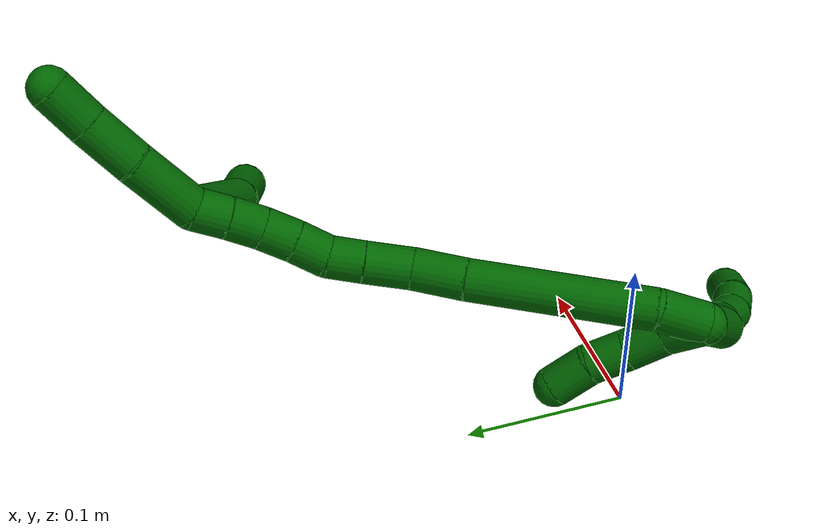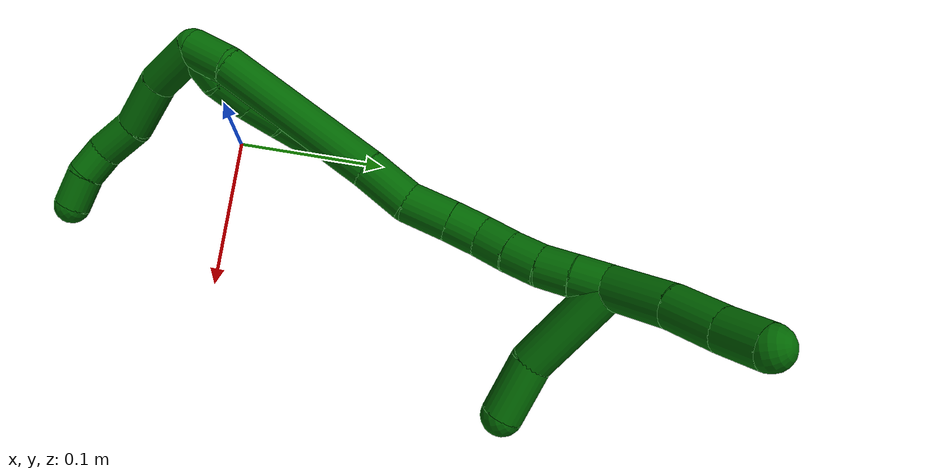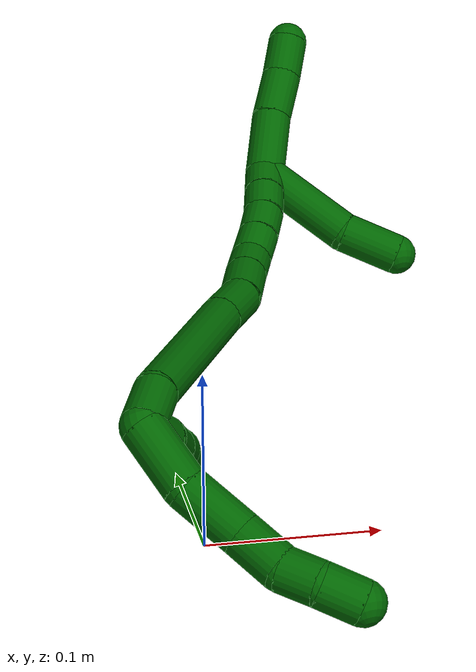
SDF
<sdf version="1.7">
 <world name="default">
  <model name="6">
   <static>0</static>
   <link name="6">
    <collision name="collision-cylinder-e_1_2_8">
     <pose>0.005325 0.004337 -0.018304 -2.90895 0.275843 -1.74212</pose>
     <geometry><cylinder><radius>0.0125</radius><length>0.0391</length></cylinder></geometry>
     <surface>
      <friction><ode><mu>1.16</mu><mu2>1.16</mu2><slip1>0</slip1><slip2>0</slip2></ode></friction>
      <contact><ode><kp>1e+06</kp><kd>1</kd><max_vel>0</max_vel><min_depth>0.001</min_depth></ode></contact>
     </surface>
    </collision>
    <visual name="visual-cylinder-e_1_2_8">
     <pose>0.005325 0.004337 -0.018304 -2.90895 0.275843 -1.74212</pose>
     <geometry><cylinder><radius>0.0125</radius><length>0.0391</length></cylinder></geometry>
     <material><ambient>0 0.392157 0.003922 1</ambient></material>
    </visual>
    <collision name="collision-cylinder-e_2_8_9">
     <pose>0.018654 0.017086 -0.051414 -2.6249 0.43943 -1.40329</pose>
     <geometry><cylinder><radius>0.0125</radius><length>0.037633</length></cylinder></geometry>
     <surface>
      <friction><ode><mu>1.16</mu><mu2>1.16</mu2><slip1>0</slip1><slip2>0</slip2></ode></friction>
      <contact><ode><kp>1e+06</kp><kd>1</kd><max_vel>0</max_vel><min_depth>0.001</min_depth></ode></contact>
     </surface>
    </collision>
    <visual name="visual-cylinder-e_2_8_9">
     <pose>0.018654 0.017086 -0.051414 -2.6249 0.43943 -1.40329</pose>
     <geometry><cylinder><radius>0.0125</radius><length>0.037633</length></cylinder></geometry>
     <material><ambient>0 0.392157 0.003922 1</ambient></material>
    </visual>
    <collision name="collision-cylinder-e_3_9_10">
     <pose>0.033966 0.027417 -0.078231 -2.98317 0.540932 -2.58391</pose>
     <geometry><cylinder><radius>0.0125</radius><length>0.028379</length></cylinder></geometry>
     <surface>
      <friction><ode><mu>1.16</mu><mu2>1.16</mu2><slip1>0</slip1><slip2>0</slip2></ode></friction>
      <contact><ode><kp>1e+06</kp><kd>1</kd><max_vel>0</max_vel><min_depth>0.001</min_depth></ode></contact>
     </surface>
    </collision>
    <visual name="visual-cylinder-e_3_9_10">
     <pose>0.033966 0.027417 -0.078231 -2.98317 0.540932 -2.58391</pose>
     <geometry><cylinder><radius>0.0125</radius><length>0.028379</length></cylinder></geometry>
     <material><ambient>0 0.392157 0.003922 1</ambient></material>
    </visual>
    <collision name="collision-cylinder-e_4_10_11">
     <pose>0.048925 0.031942 -0.096827 -2.76479 0.82413 -2.31894</pose>
     <geometry><cylinder><radius>0.0125</radius><length>0.020852</length></cylinder></geometry>
     <surface>
      <friction><ode><mu>1.16</mu><mu2>1.16</mu2><slip1>0</slip1><slip2>0</slip2></ode></friction>
      <contact><ode><kp>1e+06</kp><kd>1</kd><max_vel>0</max_vel><min_depth>0.001</min_depth></ode></contact>
     </surface>
    </collision>
    <visual name="visual-cylinder-e_4_10_11">
     <pose>0.048925 0.031942 -0.096827 -2.76479 0.82413 -2.31894</pose>
     <geometry><cylinder><radius>0.0125</radius><length>0.020852</length></cylinder></geometry>
     <material><ambient>0 0.392157 0.003922 1</ambient></material>
    </visual>
    <collision name="collision-cylinder-e_5_11_6">
     <pose>0.064146 0.04064 -0.110485 -2.43061 0.681256 -1.52445</pose>
     <geometry><cylinder><radius>0.0125</radius><length>0.024036</length></cylinder></geometry>
     <surface>
      <friction><ode><mu>1.16</mu><mu2>1.16</mu2><slip1>0</slip1><slip2>0</slip2></ode></friction>
      <contact><ode><kp>1e+06</kp><kd>1</kd><max_vel>0</max_vel><min_depth>0.001</min_depth></ode></contact>
     </surface>
    </collision>
    <visual name="visual-cylinder-e_5_11_6">
     <pose>0.064146 0.04064 -0.110485 -2.43061 0.681256 -1.52445</pose>
     <geometry><cylinder><radius>0.0125</radius><length>0.024036</length></cylinder></geometry>
     <material><ambient>0 0.392157 0.003922 1</ambient></material>
    </visual>
    <collision name="collision-cylinder-e_1_2_12">
     <pose>-0.000823 0.012654 -0.000222 -1.58834 -0.064932 0.06608</pose>
     <geometry><cylinder><radius>0.0125</radius><length>0.025365</length></cylinder></geometry>
     <surface>
      <friction><ode><mu>1.16</mu><mu2>1.16</mu2><slip1>0</slip1><slip2>0</slip2></ode></friction>
      <contact><ode><kp>1e+06</kp><kd>1</kd><max_vel>0</max_vel><min_depth>0.001</min_depth></ode></contact>
     </surface>
    </collision>
    <visual name="visual-cylinder-e_1_2_12">
     <pose>-0.000823 0.012654 -0.000222 -1.58834 -0.064932 0.06608</pose>
     <geometry><cylinder><radius>0.0125</radius><length>0.025365</length></cylinder></geometry>
     <material><ambient>0 0.392157 0.003922 1</ambient></material>
    </visual>
    <collision name="collision-cylinder-e_2_12_13">
     <pose>-0.005264 0.037212 0.001059 -1.44524 -0.292852 0.258621</pose>
     <geometry><cylinder><radius>0.0125</radius><length>0.025064</length></cylinder></geometry>
     <surface>
      <friction><ode><mu>1.16</mu><mu2>1.16</mu2><slip1>0</slip1><slip2>0</slip2></ode></friction>
      <contact><ode><kp>1e+06</kp><kd>1</kd><max_vel>0</max_vel><min_depth>0.001</min_depth></ode></contact>
     </surface>
    </collision>
    <visual name="visual-cylinder-e_2_12_13">
     <pose>-0.005264 0.037212 0.001059 -1.44524 -0.292852 0.258621</pose>
     <geometry><cylinder><radius>0.0125</radius><length>0.025064</length></cylinder></geometry>
     <material><ambient>0 0.392157 0.003922 1</ambient></material>
    </visual>
    <collision name="collision-cylinder-e_3_13_14">
     <pose>-0.012517 0.060146 0.005608 -1.30131 -0.307647 0.23497</pose>
     <geometry><cylinder><radius>0.0125</radius><length>0.024013</length></cylinder></geometry>
     <surface>
      <friction><ode><mu>1.16</mu><mu2>1.16</mu2><slip1>0</slip1><slip2>0</slip2></ode></friction>
      <contact><ode><kp>1e+06</kp><kd>1</kd><max_vel>0</max_vel><min_depth>0.001</min_depth></ode></contact>
     </surface>
    </collision>
    <visual name="visual-cylinder-e_3_13_14">
     <pose>-0.012517 0.060146 0.005608 -1.30131 -0.307647 0.23497</pose>
     <geometry><cylinder><radius>0.0125</radius><length>0.024013</length></cylinder></geometry>
     <material><ambient>0 0.392157 0.003922 1</ambient></material>
    </visual>
    <collision name="collision-cylinder-e_4_14_5">
     <pose>-0.021589 0.082697 0.009665 -1.48326 -0.439363 0.403527</pose>
     <geometry><cylinder><radius>0.0125</radius><length>0.025557</length></cylinder></geometry>
     <surface>
      <friction><ode><mu>1.16</mu><mu2>1.16</mu2><slip1>0</slip1><slip2>0</slip2></ode></friction>
      <contact><ode><kp>1e+06</kp><kd>1</kd><max_vel>0</max_vel><min_depth>0.001</min_depth></ode></contact>
     </surface>
    </collision>
    <visual name="visual-cylinder-e_4_14_5">
     <pose>-0.021589 0.082697 0.009665 -1.48326 -0.439363 0.403527</pose>
     <geometry><cylinder><radius>0.0125</radius><length>0.025557</length></cylinder></geometry>
     <material><ambient>0 0.392157 0.003922 1</ambient></material>
    </visual>
    <collision name="collision-cylinder-e_1_2_15">
     <pose>0.002022 0.00901 0.011284 -0.673784 0.139126 -0.048797</pose>
     <geometry><cylinder><radius>0.0125</radius><length>0.029162</length></cylinder></geometry>
     <surface>
      <friction><ode><mu>1.16</mu><mu2>1.16</mu2><slip1>0</slip1><slip2>0</slip2></ode></friction>
      <contact><ode><kp>1e+06</kp><kd>1</kd><max_vel>0</max_vel><min_depth>0.001</min_depth></ode></contact>
     </surface>
    </collision>
    <visual name="visual-cylinder-e_1_2_15">
     <pose>0.002022 0.00901 0.011284 -0.673784 0.139126 -0.048797</pose>
     <geometry><cylinder><radius>0.0125</radius><length>0.029162</length></cylinder></geometry>
     <material><ambient>0 0.392157 0.003922 1</ambient></material>
    </visual>
    <collision name="collision-cylinder-e_2_15_16">
     <pose>0.01017 0.06155 0.05458 -0.936721 0.112893 -0.057159</pose>
     <geometry><cylinder><radius>0.0125</radius><length>0.108758</length></cylinder></geometry>
     <surface>
      <friction><ode><mu>1.16</mu><mu2>1.16</mu2><slip1>0</slip1><slip2>0</slip2></ode></friction>
      <contact><ode><kp>1e+06</kp><kd>1</kd><max_vel>0</max_vel><min_depth>0.001</min_depth></ode></contact>
     </surface>
    </collision>
    <visual name="visual-cylinder-e_2_15_16">
     <pose>0.01017 0.06155 0.05458 -0.936721 0.112893 -0.057159</pose>
     <geometry><cylinder><radius>0.0125</radius><length>0.108758</length></cylinder></geometry>
     <material><ambient>0 0.392157 0.003922 1</ambient></material>
    </visual>
    <collision name="collision-cylinder-e_3_16_17">
     <pose>0.018979 0.117934 0.09573 -0.952747 0.168471 -0.087084</pose>
     <geometry><cylinder><radius>0.0125</radius><length>0.031998</length></cylinder></geometry>
     <surface>
      <friction><ode><mu>1.16</mu><mu2>1.16</mu2><slip1>0</slip1><slip2>0</slip2></ode></friction>
      <contact><ode><kp>1e+06</kp><kd>1</kd><max_vel>0</max_vel><min_depth>0.001</min_depth></ode></contact>
     </surface>
    </collision>
    <visual name="visual-cylinder-e_3_16_17">
     <pose>0.018979 0.117934 0.09573 -0.952747 0.168471 -0.087084</pose>
     <geometry><cylinder><radius>0.0125</radius><length>0.031998</length></cylinder></geometry>
     <material><ambient>0 0.392157 0.003922 1</ambient></material>
    </visual>
    <collision name="collision-cylinder-e_4_17_18">
     <pose>0.021766 0.140318 0.11547 -0.732223 0.007355 -0.00282</pose>
     <geometry><cylinder><radius>0.0125</radius><length>0.028509</length></cylinder></geometry>
     <surface>
      <friction><ode><mu>1.16</mu><mu2>1.16</mu2><slip1>0</slip1><slip2>0</slip2></ode></friction>
      <contact><ode><kp>1e+06</kp><kd>1</kd><max_vel>0</max_vel><min_depth>0.001</min_depth></ode></contact>
     </surface>
    </collision>
    <visual name="visual-cylinder-e_4_17_18">
     <pose>0.021766 0.140318 0.11547 -0.732223 0.007355 -0.00282</pose>
     <geometry><cylinder><radius>0.0125</radius><length>0.028509</length></cylinder></geometry>
     <material><ambient>0 0.392157 0.003922 1</ambient></material>
    </visual>
    <collision name="collision-cylinder-e_5_18_19">
     <pose>0.022246 0.156866 0.133623 -0.748752 0.036305 -0.014266</pose>
     <geometry><cylinder><radius>0.0125</radius><length>0.020634</length></cylinder></geometry>
     <surface>
      <friction><ode><mu>1.16</mu><mu2>1.16</mu2><slip1>0</slip1><slip2>0</slip2></ode></friction>
      <contact><ode><kp>1e+06</kp><kd>1</kd><max_vel>0</max_vel><min_depth>0.001</min_depth></ode></contact>
     </surface>
    </collision>
    <visual name="visual-cylinder-e_5_18_19">
     <pose>0.022246 0.156866 0.133623 -0.748752 0.036305 -0.014266</pose>
     <geometry><cylinder><radius>0.0125</radius><length>0.020634</length></cylinder></geometry>
     <material><ambient>0 0.392157 0.003922 1</ambient></material>
    </visual>
    <collision name="collision-cylinder-e_6_19_20">
     <pose>0.025237 0.16898 0.149752 -0.536105 0.256528 -0.070818</pose>
     <geometry><cylinder><radius>0.0125</radius><length>0.020626</length></cylinder></geometry>
     <surface>
      <friction><ode><mu>1.16</mu><mu2>1.16</mu2><slip1>0</slip1><slip2>0</slip2></ode></friction>
      <contact><ode><kp>1e+06</kp><kd>1</kd><max_vel>0</max_vel><min_depth>0.001</min_depth></ode></contact>
     </surface>
    </collision>
    <visual name="visual-cylinder-e_6_19_20">
     <pose>0.025237 0.16898 0.149752 -0.536105 0.256528 -0.070818</pose>
     <geometry><cylinder><radius>0.0125</radius><length>0.020626</length></cylinder></geometry>
     <material><ambient>0 0.392157 0.003922 1</ambient></material>
    </visual>
    <collision name="collision-cylinder-e_7_20_21">
     <pose>0.029734 0.179137 0.166895 -0.533634 0.186791 -0.051194</pose>
     <geometry><cylinder><radius>0.0125</radius><length>0.020253</length></cylinder></geometry>
     <surface>
      <friction><ode><mu>1.16</mu><mu2>1.16</mu2><slip1>0</slip1><slip2>0</slip2></ode></friction>
      <contact><ode><kp>1e+06</kp><kd>1</kd><max_vel>0</max_vel><min_depth>0.001</min_depth></ode></contact>
     </surface>
    </collision>
    <visual name="visual-cylinder-e_7_20_21">
     <pose>0.029734 0.179137 0.166895 -0.533634 0.186791 -0.051194</pose>
     <geometry><cylinder><radius>0.0125</radius><length>0.020253</length></cylinder></geometry>
     <material><ambient>0 0.392157 0.003922 1</ambient></material>
    </visual>
    <collision name="collision-cylinder-e_8_21_22">
     <pose>0.032331 0.188674 0.184382 -0.46505 0.071642 -0.016972</pose>
     <geometry><cylinder><radius>0.0125</radius><length>0.020011</length></cylinder></geometry>
     <surface>
      <friction><ode><mu>1.16</mu><mu2>1.16</mu2><slip1>0</slip1><slip2>0</slip2></ode></friction>
      <contact><ode><kp>1e+06</kp><kd>1</kd><max_vel>0</max_vel><min_depth>0.001</min_depth></ode></contact>
     </surface>
    </collision>
    <visual name="visual-cylinder-e_8_21_22">
     <pose>0.032331 0.188674 0.184382 -0.46505 0.071642 -0.016972</pose>
     <geometry><cylinder><radius>0.0125</radius><length>0.020011</length></cylinder></geometry>
     <material><ambient>0 0.392157 0.003922 1</ambient></material>
    </visual>
    <collision name="collision-cylinder-e_9_22_1">
     <pose>0.033445 0.198019 0.202055 -0.507714 0.039772 -0.01032</pose>
     <geometry><cylinder><radius>0.0125</radius><length>0.020048</length></cylinder></geometry>
     <surface>
      <friction><ode><mu>1.16</mu><mu2>1.16</mu2><slip1>0</slip1><slip2>0</slip2></ode></friction>
      <contact><ode><kp>1e+06</kp><kd>1</kd><max_vel>0</max_vel><min_depth>0.001</min_depth></ode></contact>
     </surface>
    </collision>
    <visual name="visual-cylinder-e_9_22_1">
     <pose>0.033445 0.198019 0.202055 -0.507714 0.039772 -0.01032</pose>
     <geometry><cylinder><radius>0.0125</radius><length>0.020048</length></cylinder></geometry>
     <material><ambient>0 0.392157 0.003922 1</ambient></material>
    </visual>
    <collision name="collision-cylinder-e_1_1_23">
     <pose>0.049666 0.214059 0.185531 -2.72548 0.519977 -1.79992</pose>
     <geometry><cylinder><radius>0.0125</radius><length>0.063688</length></cylinder></geometry>
     <surface>
      <friction><ode><mu>1.16</mu><mu2>1.16</mu2><slip1>0</slip1><slip2>0</slip2></ode></friction>
      <contact><ode><kp>1e+06</kp><kd>1</kd><max_vel>0</max_vel><min_depth>0.001</min_depth></ode></contact>
     </surface>
    </collision>
    <visual name="visual-cylinder-e_1_1_23">
     <pose>0.049666 0.214059 0.185531 -2.72548 0.519977 -1.79992</pose>
     <geometry><cylinder><radius>0.0125</radius><length>0.063688</length></cylinder></geometry>
     <material><ambient>0 0.392157 0.003922 1</ambient></material>
    </visual>
    <collision name="collision-cylinder-e_2_23_4">
     <pose>0.076988 0.234548 0.149739 -2.41646 0.685931 -1.51036</pose>
     <geometry><cylinder><radius>0.0125</radius><length>0.036312</length></cylinder></geometry>
     <surface>
      <friction><ode><mu>1.16</mu><mu2>1.16</mu2><slip1>0</slip1><slip2>0</slip2></ode></friction>
      <contact><ode><kp>1e+06</kp><kd>1</kd><max_vel>0</max_vel><min_depth>0.001</min_depth></ode></contact>
     </surface>
    </collision>
    <visual name="visual-cylinder-e_2_23_4">
     <pose>0.076988 0.234548 0.149739 -2.41646 0.685931 -1.51036</pose>
     <geometry><cylinder><radius>0.0125</radius><length>0.036312</length></cylinder></geometry>
     <material><ambient>0 0.392157 0.003922 1</ambient></material>
    </visual>
    <collision name="collision-cylinder-e_1_1_24">
     <pose>0.040539 0.206228 0.230286 -0.169751 0.326623 -0.028037</pose>
     <geometry><cylinder><radius>0.0125</radius><length>0.041731</length></cylinder></geometry>
     <surface>
      <friction><ode><mu>1.16</mu><mu2>1.16</mu2><slip1>0</slip1><slip2>0</slip2></ode></friction>
      <contact><ode><kp>1e+06</kp><kd>1</kd><max_vel>0</max_vel><min_depth>0.001</min_depth></ode></contact>
     </surface>
    </collision>
    <visual name="visual-cylinder-e_1_1_24">
     <pose>0.040539 0.206228 0.230286 -0.169751 0.326623 -0.028037</pose>
     <geometry><cylinder><radius>0.0125</radius><length>0.041731</length></cylinder></geometry>
     <material><ambient>0 0.392157 0.003922 1</ambient></material>
    </visual>
    <collision name="collision-cylinder-e_2_24_25">
     <pose>0.053531 0.213059 0.263886 -0.242486 0.408528 -0.050469</pose>
     <geometry><cylinder><radius>0.0125</radius><length>0.031705</length></cylinder></geometry>
     <surface>
      <friction><ode><mu>1.16</mu><mu2>1.16</mu2><slip1>0</slip1><slip2>0</slip2></ode></friction>
      <contact><ode><kp>1e+06</kp><kd>1</kd><max_vel>0</max_vel><min_depth>0.001</min_depth></ode></contact>
     </surface>
    </collision>
    <visual name="visual-cylinder-e_2_24_25">
     <pose>0.053531 0.213059 0.263886 -0.242486 0.408528 -0.050469</pose>
     <geometry><cylinder><radius>0.0125</radius><length>0.031705</length></cylinder></geometry>
     <material><ambient>0 0.392157 0.003922 1</ambient></material>
    </visual>
    <collision name="collision-cylinder-e_3_25_3">
     <pose>0.065088 0.218334 0.290074 -0.146587 0.407146 -0.030312</pose>
     <geometry><cylinder><radius>0.0125</radius><length>0.026564</length></cylinder></geometry>
     <surface>
      <friction><ode><mu>1.16</mu><mu2>1.16</mu2><slip1>0</slip1><slip2>0</slip2></ode></friction>
      <contact><ode><kp>1e+06</kp><kd>1</kd><max_vel>0</max_vel><min_depth>0.001</min_depth></ode></contact>
     </surface>
    </collision>
    <visual name="visual-cylinder-e_3_25_3">
     <pose>0.065088 0.218334 0.290074 -0.146587 0.407146 -0.030312</pose>
     <geometry><cylinder><radius>0.0125</radius><length>0.026564</length></cylinder></geometry>
     <material><ambient>0 0.392157 0.003922 1</ambient></material>
    </visual>
    <collision name="collision-sphere-3">
     <pose>0.070347 0.220115 0.30214 0 -0 0</pose>
     <geometry><sphere><radius>0.0125</radius></sphere></geometry>
     <surface>
      <friction><ode><mu>1.16</mu><mu2>1.16</mu2><slip1>0</slip1><slip2>0</slip2></ode></friction>
      <contact><ode><kp>1e+06</kp><kd>1</kd><max_vel>0</max_vel><min_depth>0.001</min_depth></ode></contact>
     </surface>
    </collision>
    <visual name="visual-sphere-3">
     <pose>0.070347 0.220115 0.30214 0 -0 0</pose>
     <geometry><sphere><radius>0.0125</radius></sphere></geometry>
     <material><ambient>0 0.392157 0.003922 1</ambient></material>
    </visual>
    <collision name="collision-sphere-25">
     <pose>0.059828 0.216553 0.278009 0 -0 0</pose>
     <geometry><sphere><radius>0.0125</radius></sphere></geometry>
     <surface>
      <friction><ode><mu>1.16</mu><mu2>1.16</mu2><slip1>0</slip1><slip2>0</slip2></ode></friction>
      <contact><ode><kp>1e+06</kp><kd>1</kd><max_vel>0</max_vel><min_depth>0.001</min_depth></ode></contact>
     </surface>
    </collision>
    <visual name="visual-sphere-25">
     <pose>0.059828 0.216553 0.278009 0 -0 0</pose>
     <geometry><sphere><radius>0.0125</radius></sphere></geometry>
     <material><ambient>0 0.392157 0.003922 1</ambient></material>
    </visual>
    <collision name="collision-sphere-24">
     <pose>0.047233 0.209566 0.249764 0 -0 0</pose>
     <geometry><sphere><radius>0.0125</radius></sphere></geometry>
     <surface>
      <friction><ode><mu>1.16</mu><mu2>1.16</mu2><slip1>0</slip1><slip2>0</slip2></ode></friction>
      <contact><ode><kp>1e+06</kp><kd>1</kd><max_vel>0</max_vel><min_depth>0.001</min_depth></ode></contact>
     </surface>
    </collision>
    <visual name="visual-sphere-24">
     <pose>0.047233 0.209566 0.249764 0 -0 0</pose>
     <geometry><sphere><radius>0.0125</radius></sphere></geometry>
     <material><ambient>0 0.392157 0.003922 1</ambient></material>
    </visual>
    <collision name="collision-sphere-4">
     <pose>0.088488 0.243866 0.139224 0 -0 0</pose>
     <geometry><sphere><radius>0.0125</radius></sphere></geometry>
     <surface>
      <friction><ode><mu>1.16</mu><mu2>1.16</mu2><slip1>0</slip1><slip2>0</slip2></ode></friction>
      <contact><ode><kp>1e+06</kp><kd>1</kd><max_vel>0</max_vel><min_depth>0.001</min_depth></ode></contact>
     </surface>
    </collision>
    <visual name="visual-sphere-4">
     <pose>0.088488 0.243866 0.139224 0 -0 0</pose>
     <geometry><sphere><radius>0.0125</radius></sphere></geometry>
     <material><ambient>0 0.392157 0.003922 1</ambient></material>
    </visual>
    <collision name="collision-sphere-23">
     <pose>0.065488 0.225229 0.160254 0 -0 0</pose>
     <geometry><sphere><radius>0.0125</radius></sphere></geometry>
     <surface>
      <friction><ode><mu>1.16</mu><mu2>1.16</mu2><slip1>0</slip1><slip2>0</slip2></ode></friction>
      <contact><ode><kp>1e+06</kp><kd>1</kd><max_vel>0</max_vel><min_depth>0.001</min_depth></ode></contact>
     </surface>
    </collision>
    <visual name="visual-sphere-23">
     <pose>0.065488 0.225229 0.160254 0 -0 0</pose>
     <geometry><sphere><radius>0.0125</radius></sphere></geometry>
     <material><ambient>0 0.392157 0.003922 1</ambient></material>
    </visual>
    <collision name="collision-sphere-1">
     <pose>0.033844 0.202889 0.210808 0 -0 0</pose>
     <geometry><sphere><radius>0.0125</radius></sphere></geometry>
     <surface>
      <friction><ode><mu>1.16</mu><mu2>1.16</mu2><slip1>0</slip1><slip2>0</slip2></ode></friction>
      <contact><ode><kp>1e+06</kp><kd>1</kd><max_vel>0</max_vel><min_depth>0.001</min_depth></ode></contact>
     </surface>
    </collision>
    <visual name="visual-sphere-1">
     <pose>0.033844 0.202889 0.210808 0 -0 0</pose>
     <geometry><sphere><radius>0.0125</radius></sphere></geometry>
     <material><ambient>0 0.392157 0.003922 1</ambient></material>
    </visual>
    <collision name="collision-sphere-22">
     <pose>0.033047 0.19315 0.193302 0 -0 0</pose>
     <geometry><sphere><radius>0.0125</radius></sphere></geometry>
     <surface>
      <friction><ode><mu>1.16</mu><mu2>1.16</mu2><slip1>0</slip1><slip2>0</slip2></ode></friction>
      <contact><ode><kp>1e+06</kp><kd>1</kd><max_vel>0</max_vel><min_depth>0.001</min_depth></ode></contact>
     </surface>
    </collision>
    <visual name="visual-sphere-22">
     <pose>0.033047 0.19315 0.193302 0 -0 0</pose>
     <geometry><sphere><radius>0.0125</radius></sphere></geometry>
     <material><ambient>0 0.392157 0.003922 1</ambient></material>
    </visual>
    <collision name="collision-sphere-21">
     <pose>0.031614 0.184198 0.175462 0 -0 0</pose>
     <geometry><sphere><radius>0.0125</radius></sphere></geometry>
     <surface>
      <friction><ode><mu>1.16</mu><mu2>1.16</mu2><slip1>0</slip1><slip2>0</slip2></ode></friction>
      <contact><ode><kp>1e+06</kp><kd>1</kd><max_vel>0</max_vel><min_depth>0.001</min_depth></ode></contact>
     </surface>
    </collision>
    <visual name="visual-sphere-21">
     <pose>0.031614 0.184198 0.175462 0 -0 0</pose>
     <geometry><sphere><radius>0.0125</radius></sphere></geometry>
     <material><ambient>0 0.392157 0.003922 1</ambient></material>
    </visual>
    <collision name="collision-sphere-6">
     <pose>0.071714 0.046732 -0.117559 0 -0 0</pose>
     <geometry><sphere><radius>0.0125</radius></sphere></geometry>
     <surface>
      <friction><ode><mu>1.16</mu><mu2>1.16</mu2><slip1>0</slip1><slip2>0</slip2></ode></friction>
      <contact><ode><kp>1e+06</kp><kd>1</kd><max_vel>0</max_vel><min_depth>0.001</min_depth></ode></contact>
     </surface>
    </collision>
    <visual name="visual-sphere-6">
     <pose>0.071714 0.046732 -0.117559 0 -0 0</pose>
     <geometry><sphere><radius>0.0125</radius></sphere></geometry>
     <material><ambient>0 0.392157 0.003922 1</ambient></material>
    </visual>
    <collision name="collision-sphere-11">
     <pose>0.056577 0.034548 -0.103412 0 -0 0</pose>
     <geometry><sphere><radius>0.0125</radius></sphere></geometry>
     <surface>
      <friction><ode><mu>1.16</mu><mu2>1.16</mu2><slip1>0</slip1><slip2>0</slip2></ode></friction>
      <contact><ode><kp>1e+06</kp><kd>1</kd><max_vel>0</max_vel><min_depth>0.001</min_depth></ode></contact>
     </surface>
    </collision>
    <visual name="visual-sphere-11">
     <pose>0.056577 0.034548 -0.103412 0 -0 0</pose>
     <geometry><sphere><radius>0.0125</radius></sphere></geometry>
     <material><ambient>0 0.392157 0.003922 1</ambient></material>
    </visual>
    <collision name="collision-sphere-10">
     <pose>0.041272 0.029336 -0.090242 0 -0 0</pose>
     <geometry><sphere><radius>0.0125</radius></sphere></geometry>
     <surface>
      <friction><ode><mu>1.16</mu><mu2>1.16</mu2><slip1>0</slip1><slip2>0</slip2></ode></friction>
      <contact><ode><kp>1e+06</kp><kd>1</kd><max_vel>0</max_vel><min_depth>0.001</min_depth></ode></contact>
     </surface>
    </collision>
    <visual name="visual-sphere-10">
     <pose>0.041272 0.029336 -0.090242 0 -0 0</pose>
     <geometry><sphere><radius>0.0125</radius></sphere></geometry>
     <material><ambient>0 0.392157 0.003922 1</ambient></material>
    </visual>
    <collision name="collision-sphere-9">
     <pose>0.026659 0.025498 -0.06622 0 -0 0</pose>
     <geometry><sphere><radius>0.0125</radius></sphere></geometry>
     <surface>
      <friction><ode><mu>1.16</mu><mu2>1.16</mu2><slip1>0</slip1><slip2>0</slip2></ode></friction>
      <contact><ode><kp>1e+06</kp><kd>1</kd><max_vel>0</max_vel><min_depth>0.001</min_depth></ode></contact>
     </surface>
    </collision>
    <visual name="visual-sphere-9">
     <pose>0.026659 0.025498 -0.06622 0 -0 0</pose>
     <geometry><sphere><radius>0.0125</radius></sphere></geometry>
     <material><ambient>0 0.392157 0.003922 1</ambient></material>
    </visual>
    <collision name="collision-sphere-2">
     <geometry><sphere><radius>0.0125</radius></sphere></geometry>
     <surface>
      <friction><ode><mu>1.16</mu><mu2>1.16</mu2><slip1>0</slip1><slip2>0</slip2></ode></friction>
      <contact><ode><kp>1e+06</kp><kd>1</kd><max_vel>0</max_vel><min_depth>0.001</min_depth></ode></contact>
     </surface>
    </collision>
    <visual name="visual-sphere-2">
     <geometry><sphere><radius>0.0125</radius></sphere></geometry>
     <material><ambient>0 0.392157 0.003922 1</ambient></material>
    </visual>
    <collision name="collision-sphere-19">
     <pose>0.02262 0.163884 0.141176 0 -0 0</pose>
     <geometry><sphere><radius>0.0125</radius></sphere></geometry>
     <surface>
      <friction><ode><mu>1.16</mu><mu2>1.16</mu2><slip1>0</slip1><slip2>0</slip2></ode></friction>
      <contact><ode><kp>1e+06</kp><kd>1</kd><max_vel>0</max_vel><min_depth>0.001</min_depth></ode></contact>
     </surface>
    </collision>
    <visual name="visual-sphere-19">
     <pose>0.02262 0.163884 0.141176 0 -0 0</pose>
     <geometry><sphere><radius>0.0125</radius></sphere></geometry>
     <material><ambient>0 0.392157 0.003922 1</ambient></material>
    </visual>
    <collision name="collision-sphere-8">
     <pose>0.010649 0.008674 -0.036608 0 -0 0</pose>
     <geometry><sphere><radius>0.0125</radius></sphere></geometry>
     <surface>
      <friction><ode><mu>1.16</mu><mu2>1.16</mu2><slip1>0</slip1><slip2>0</slip2></ode></friction>
      <contact><ode><kp>1e+06</kp><kd>1</kd><max_vel>0</max_vel><min_depth>0.001</min_depth></ode></contact>
     </surface>
    </collision>
    <visual name="visual-sphere-8">
     <pose>0.010649 0.008674 -0.036608 0 -0 0</pose>
     <geometry><sphere><radius>0.0125</radius></sphere></geometry>
     <material><ambient>0 0.392157 0.003922 1</ambient></material>
    </visual>
    <collision name="collision-sphere-12">
     <pose>-0.001646 0.025308 -0.000444 0 -0 0</pose>
     <geometry><sphere><radius>0.0125</radius></sphere></geometry>
     <surface>
      <friction><ode><mu>1.16</mu><mu2>1.16</mu2><slip1>0</slip1><slip2>0</slip2></ode></friction>
      <contact><ode><kp>1e+06</kp><kd>1</kd><max_vel>0</max_vel><min_depth>0.001</min_depth></ode></contact>
     </surface>
    </collision>
    <visual name="visual-sphere-12">
     <pose>-0.001646 0.025308 -0.000444 0 -0 0</pose>
     <geometry><sphere><radius>0.0125</radius></sphere></geometry>
     <material><ambient>0 0.392157 0.003922 1</ambient></material>
    </visual>
    <collision name="collision-sphere-13">
     <pose>-0.008882 0.049116 0.002561 0 -0 0</pose>
     <geometry><sphere><radius>0.0125</radius></sphere></geometry>
     <surface>
      <friction><ode><mu>1.16</mu><mu2>1.16</mu2><slip1>0</slip1><slip2>0</slip2></ode></friction>
      <contact><ode><kp>1e+06</kp><kd>1</kd><max_vel>0</max_vel><min_depth>0.001</min_depth></ode></contact>
     </surface>
    </collision>
    <visual name="visual-sphere-13">
     <pose>-0.008882 0.049116 0.002561 0 -0 0</pose>
     <geometry><sphere><radius>0.0125</radius></sphere></geometry>
     <material><ambient>0 0.392157 0.003922 1</ambient></material>
    </visual>
    <collision name="collision-sphere-14">
     <pose>-0.016153 0.071176 0.008654 0 -0 0</pose>
     <geometry><sphere><radius>0.0125</radius></sphere></geometry>
     <surface>
      <friction><ode><mu>1.16</mu><mu2>1.16</mu2><slip1>0</slip1><slip2>0</slip2></ode></friction>
      <contact><ode><kp>1e+06</kp><kd>1</kd><max_vel>0</max_vel><min_depth>0.001</min_depth></ode></contact>
     </surface>
    </collision>
    <visual name="visual-sphere-14">
     <pose>-0.016153 0.071176 0.008654 0 -0 0</pose>
     <geometry><sphere><radius>0.0125</radius></sphere></geometry>
     <material><ambient>0 0.392157 0.003922 1</ambient></material>
    </visual>
    <collision name="collision-sphere-5">
     <pose>-0.027024 0.094217 0.010676 0 -0 0</pose>
     <geometry><sphere><radius>0.0125</radius></sphere></geometry>
     <surface>
      <friction><ode><mu>1.16</mu><mu2>1.16</mu2><slip1>0</slip1><slip2>0</slip2></ode></friction>
      <contact><ode><kp>1e+06</kp><kd>1</kd><max_vel>0</max_vel><min_depth>0.001</min_depth></ode></contact>
     </surface>
    </collision>
    <visual name="visual-sphere-5">
     <pose>-0.027024 0.094217 0.010676 0 -0 0</pose>
     <geometry><sphere><radius>0.0125</radius></sphere></geometry>
     <material><ambient>0 0.392157 0.003922 1</ambient></material>
    </visual>
    <collision name="collision-sphere-15">
     <pose>0.004044 0.01802 0.022569 0 -0 0</pose>
     <geometry><sphere><radius>0.0125</radius></sphere></geometry>
     <surface>
      <friction><ode><mu>1.16</mu><mu2>1.16</mu2><slip1>0</slip1><slip2>0</slip2></ode></friction>
      <contact><ode><kp>1e+06</kp><kd>1</kd><max_vel>0</max_vel><min_depth>0.001</min_depth></ode></contact>
     </surface>
    </collision>
    <visual name="visual-sphere-15">
     <pose>0.004044 0.01802 0.022569 0 -0 0</pose>
     <geometry><sphere><radius>0.0125</radius></sphere></geometry>
     <material><ambient>0 0.392157 0.003922 1</ambient></material>
    </visual>
    <collision name="collision-sphere-16">
     <pose>0.016296 0.10508 0.08659 0 -0 0</pose>
     <geometry><sphere><radius>0.0125</radius></sphere></geometry>
     <surface>
      <friction><ode><mu>1.16</mu><mu2>1.16</mu2><slip1>0</slip1><slip2>0</slip2></ode></friction>
      <contact><ode><kp>1e+06</kp><kd>1</kd><max_vel>0</max_vel><min_depth>0.001</min_depth></ode></contact>
     </surface>
    </collision>
    <visual name="visual-sphere-16">
     <pose>0.016296 0.10508 0.08659 0 -0 0</pose>
     <geometry><sphere><radius>0.0125</radius></sphere></geometry>
     <material><ambient>0 0.392157 0.003922 1</ambient></material>
    </visual>
    <collision name="collision-sphere-17">
     <pose>0.021661 0.130789 0.104869 0 -0 0</pose>
     <geometry><sphere><radius>0.0125</radius></sphere></geometry>
     <surface>
      <friction><ode><mu>1.16</mu><mu2>1.16</mu2><slip1>0</slip1><slip2>0</slip2></ode></friction>
      <contact><ode><kp>1e+06</kp><kd>1</kd><max_vel>0</max_vel><min_depth>0.001</min_depth></ode></contact>
     </surface>
    </collision>
    <visual name="visual-sphere-17">
     <pose>0.021661 0.130789 0.104869 0 -0 0</pose>
     <geometry><sphere><radius>0.0125</radius></sphere></geometry>
     <material><ambient>0 0.392157 0.003922 1</ambient></material>
    </visual>
    <collision name="collision-sphere-18">
     <pose>0.021871 0.149848 0.126071 0 -0 0</pose>
     <geometry><sphere><radius>0.0125</radius></sphere></geometry>
     <surface>
      <friction><ode><mu>1.16</mu><mu2>1.16</mu2><slip1>0</slip1><slip2>0</slip2></ode></friction>
      <contact><ode><kp>1e+06</kp><kd>1</kd><max_vel>0</max_vel><min_depth>0.001</min_depth></ode></contact>
     </surface>
    </collision>
    <visual name="visual-sphere-18">
     <pose>0.021871 0.149848 0.126071 0 -0 0</pose>
     <geometry><sphere><radius>0.0125</radius></sphere></geometry>
     <material><ambient>0 0.392157 0.003922 1</ambient></material>
    </visual>
    <collision name="collision-sphere-20">
     <pose>0.027853 0.174075 0.158328 0 -0 0</pose>
     <geometry><sphere><radius>0.0125</radius></sphere></geometry>
     <surface>
      <friction><ode><mu>1.16</mu><mu2>1.16</mu2><slip1>0</slip1><slip2>0</slip2></ode></friction>
      <contact><ode><kp>1e+06</kp><kd>1</kd><max_vel>0</max_vel><min_depth>0.001</min_depth></ode></contact>
     </surface>
    </collision>
    <visual name="visual-sphere-20">
     <pose>0.027853 0.174075 0.158328 0 -0 0</pose>
     <geometry><sphere><radius>0.0125</radius></sphere></geometry>
     <material><ambient>0 0.392157 0.003922 1</ambient></material>
    </visual>
    <inertial>
     <pose>0.0264 0.112243 0.084506 0 -0 0</pose>
     <mass>0.75</mass>
     <inertia><ixx>0.00011</ixx><ixy>0</ixy><ixz>0</ixz><iyy>0.0001</iyy><iyz>0</iyz><izz>-0.00016</izz></inertia>
    </inertial>
   </link>
   <pose>-0.03621 -0.027955 0.084628 -0.632695 -0.500741 -0.398684</pose>
  </model>
 </world>
</sdf>
